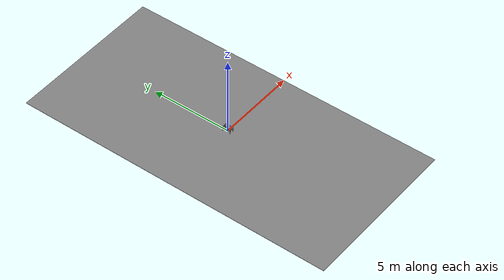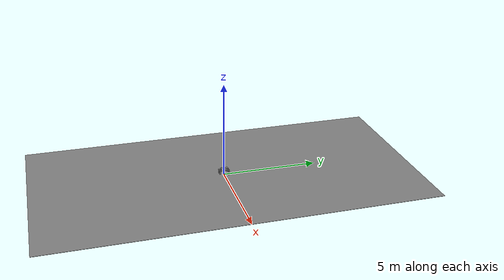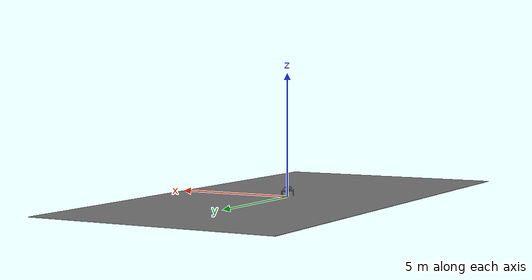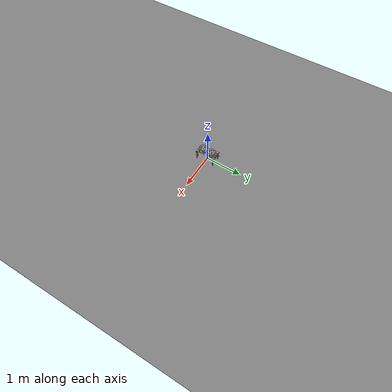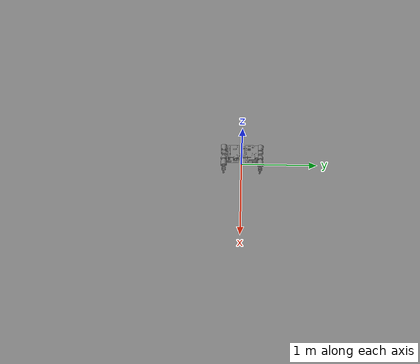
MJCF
<mujoco model="quadruped">
    <compiler angle="radian" eulerseq="XYZ" />
    <option gravity="0 0 -9.8" timestep="0.001"/>
    <asset>
        <mesh name="SPINE_BASE" file="meshes/SPINE_BASE.stl" scale="0.001 0.001 0.001" />
        <mesh name="FR_tibia" file="meshes/FR_tibia.stl" scale="0.001 0.001 0.001" />
        <mesh name="FR_femur" file="meshes/FR_femur.stl" scale="0.001 0.001 0.001" />
        <mesh name="FR_hip" file="meshes/FR_hip.stl" scale="0.001 0.001 0.001" />
        <mesh name="FL_tibia" file="meshes/FL_tibia.stl" scale="0.001 0.001 0.001" />
        <mesh name="FL_femur" file="meshes/FL_femur.stl" scale="0.001 0.001 0.001" />
        <mesh name="FL_hip" file="meshes/FL_hip.stl" scale="0.001 0.001 0.001" />
        <mesh name="RR_tibia" file="meshes/RR_tibia.stl" scale="0.001 0.001 0.001" />
        <mesh name="RR_femur" file="meshes/RR_femur.stl" scale="0.001 0.001 0.001" />
        <mesh name="RR_hip" file="meshes/RR_hip.stl" scale="0.001 0.001 0.001" />
        <mesh name="RL_tibia" file="meshes/RL_tibia.stl" scale="0.001 0.001 0.001" />
        <mesh name="RL_femur" file="meshes/RL_femur.stl" scale="0.001 0.001 0.001" />
        <mesh name="RL_hip" file="meshes/RL_hip.stl" scale="0.001 0.001 0.001" />
        <mesh name="frontbase" file="meshes/frontbase.stl" scale="0.001 0.001 0.001" />
        <mesh name="backbase" file="meshes/backbase.stl" scale="0.001 0.001 0.001" />
    </asset>
    <worldbody>
        <light directional="true" pos="-0.5 0.5 3" dir="0 0 -1" />
        <body name="tilt_plane" pos="0 0 0" euler="0 0 0">
            <joint name="plane_hinge" type="hinge" axis="1 0 0" damping="100"/>
            <geom  type="box" size="5 10 0.01"/>
        </body>
        <body name="frontbase" pos="0.0 0.0 0.0" euler="0.0 -0.0 0.0">
        <site name="imu_site" pos="0 0.12 0.35" size="0.005" rgba="1 0 0 1" />
            <joint name="root" type="free" />
            <geom name="frontbase_geom" type="mesh" mesh="frontbase" pos="0 0 0" euler="0 0 0" />
            <inertial mass="2.7047567302273086" pos="0.00033440222387868623 0.1245660632194667 0.2884083159461461" fullinertia="0.01078220929242324 0.013457553343312278 0.013262848443079664 1.1086881562630236e-05 2.426939650604682e-05 -0.0005029335341283497" />
            <body name="SPINE_BASE" pos="0.0 0.0 0.0" euler="0.0 -0.0 0.0">
                <joint name="F_j_spine" type="hinge" axis="0.0 -1.0 0.0" pos="0.0 0.048 0.2765" damping="1"/>
                <geom name="SPINE_BASE_geom" type="mesh" mesh="SPINE_BASE" pos="0 0 0" euler="0 0 0" />
                <inertial mass="0.31335795014290313" pos="3.392857252372269e-05 0.02698902626004699 0.30937648052390193" fullinertia="0.0004972224121499481 0.00096065696826848 0.0005518668776431874 -1.7053173613796147e-07 5.967022642829059e-08 1.8881962424268858e-05" />
                <body name="backbase" pos="0.0 0.0 0.0" euler="0.0 -0.0 0.0">
                    <joint name="j_universal" type="hinge" axis="-1.0 0.0 0.0" pos="0.0 0.0 0.2765" damping="1"/>
                    <geom name="backbase_geom" type="mesh" mesh="backbase" pos="0 0 0" euler="0 0 0" />
                    <inertial mass="2.3982713090097723" pos="0.0001274862400743814 -0.10802423334208117 0.2904487532785768" fullinertia="0.009337659887838579 0.012385899804342904 0.012531182800279348 2.5780826839093287e-06 4.543731847408657e-06 -8.91143168535169e-05" />
                    <body name="RR_hip" pos="0.0 0.0 0.0" euler="0.0 -0.0 0.0">
                        <joint name="RR_j_hip" type="hinge" axis="0.0 -1.0 0.0" pos="0.07 -0.176 0.266" damping="1"/>
                        <geom name="RR_hip_geom" type="mesh" mesh="RR_hip" pos="0 0 0" euler="0 0 0" />
                        <inertial mass="0.42765614096569765" pos="0.04127800942400755 -0.2273092587519674 0.26606812124931534" fullinertia="0.0003819813177835876 0.00022425957082698733 0.0003062069227042566 -2.5639633945336374e-05 5.604986032681919e-07 2.0864847461235514e-07" />
                        <body name="RR_femur" pos="0.0 0.0 0.0" euler="0.0 -0.0 0.0">
                            <joint name="RR_j_femur" type="hinge" axis="1.0 0.0 0.0" pos="0.056 -0.234 0.266" damping="1"/>
                            <geom name="RR_femur_geom" type="mesh" mesh="RR_femur" pos="0 0 0" euler="0 0 0" />
                            <inertial mass="0.5478239660925199" pos="0.10262713634913981 -0.23333676163791178 0.2564743290521438" fullinertia="0.0009210868412945078 0.0009515235171001224 0.0003898366261748873 1.0369006426390326e-05 0.00012862808425460025 -3.44730242726049e-06" />
                            <body name="RR_tibia" pos="0.0 0.0 0.0" euler="0.0 -0.0 0.0">
                                <joint name="RR_j_tibia" type="hinge" axis="1.0 0.0 0.0" pos="0.113 -0.234 0.126" damping="1"/>
                                <geom name="RR_tibia_geom" type="mesh" mesh="RR_tibia" pos="0 0 0" euler="0 0 0" />
                                <inertial mass="0.06643041309117047" pos="0.1300000003100186 -0.23399974067058146 0.07451621272270392" fullinertia="0.0001728263651286045 0.00016950454321351953 7.324185496569019e-06 1.44164288016016e-09 8.782037597132586e-17 1.432228884318612e-09" />
                            </body>
                        </body>
                    </body>
                    <body name="RL_hip" pos="0.0 0.0 0.0" euler="0.0 -0.0 0.0">
                        <joint name="RL_j_hip" type="hinge" axis="0.0 -1.0 0.0" pos="-0.07 -0.176 0.266" damping="1"/>
                        <geom name="RL_hip_geom" type="mesh" mesh="RL_hip" pos="0 0 0" euler="0 0 0" />
                        <inertial mass="0.42765614096569793" pos="-0.041278008804007546 -0.22730925875196725 0.26593187827114756" fullinertia="0.00038198131778947875 0.0002242595708328715 0.00030620692270427394 2.563963394533117e-05 5.60496829816147e-07 -2.0865824064408844e-07" />
                        <body name="RL_femur" pos="0.0 0.0 0.0" euler="0.0 -0.0 0.0">
                            <joint name="RL_j_femur" type="hinge" axis="-1.0 -0.0 -0.0" pos="-0.056 -0.234 0.266" damping="1"/>
                            <geom name="RL_femur_geom" type="mesh" mesh="RL_femur" pos="0 0 0" euler="0 0 0" />
                            <inertial mass="0.5478239660925199" pos="-0.10262713572913987 -0.23333676163791509 0.25636797041582277" fullinertia="0.0009199706233370408 0.0009504072991454657 0.00038983662617207704 -1.0369006426445837e-05 -0.00012716627840188635 -3.5134260216729274e-06" />
                            <body name="RL_tibia" pos="0.0 0.0 0.0" euler="0.0 -0.0 0.0">
                                <joint name="RL_j_tibia" type="hinge" axis="-1.0 0.0 0.0" pos="-0.113 -0.234 0.126" damping="1"/>
                                <geom name="RL_tibia_geom" type="mesh" mesh="RL_tibia" pos="0 0 0" euler="0 0 0" />
                                <inertial mass="0.06643041309117051" pos="-0.1299999996900186 -0.23400025932378982 0.07451621072657212" fullinertia="0.0001728263651286444 0.0001695045432135191 7.32418549660805e-06 1.4416428792927982e-09 -8.738669510233166e-17 -1.4322288387821208e-09" />
                            </body>
                        </body>
                    </body>
                </body>
            </body>
            <body name="FL_hip" pos="0.0 0.0 0.0" euler="0.0 -0.0 0.0">
                <joint name="FL_j_hip" type="hinge" axis="0.0 -1.0 0.0" pos="-0.07 0.18775 0.2665" damping="1"/>
                <geom name="FL_hip_geom" type="mesh" mesh="FL_hip" pos="0 0 0" euler="0 0 0" />
                <inertial mass="0.4276561259852311" pos="-0.04127800980681607 0.2390592581385746 0.26656812124525314" fullinertia="0.0003819813000275618 0.00022425955607973877 0.00030620690583911536 -2.5639628777544832e-05 -5.605021222137435e-07 -2.0865082585308503e-07" />
                <body name="FL_femur" pos="0.0 0.0 0.0" euler="0.0 -0.0 0.0">
                    <joint name="FL_j_femur" type="hinge" axis="-1.0 0.0 0.0" pos="-0.056 0.24575 0.2665" damping="1"/>
                    <geom name="FL_femur_geom" type="mesh" mesh="FL_femur" pos="0 0 0" euler="0 0 0" />
                    <inertial mass="0.54782396609252" pos="-0.10262713603913984 0.2450867616397348 0.25697432863221853" fullinertia="0.0009210868407927564 0.0009515235170791322 0.0003898366256941052 1.0369006323856025e-05 -0.00012862808425901165 3.4473026945397445e-06" />
                    <body name="FL_tibia" pos="0.0 0.0 0.0" euler="0.0 -0.0 0.0">
                        <joint name="FL_j_tibia" type="hinge" axis="-1.0 0.0 0.0" pos="-0.113 0.24575 0.1265" damping="1"/>
                        <geom name="FL_tibia_geom" type="mesh" mesh="FL_tibia" pos="0 0 0" euler="0 0 0" />
                        <inertial mass="0.06643041309117047" pos="-0.1300000000000186 0.24574974067057934 0.0750162123027041" fullinertia="0.00017282636512864612 0.00016950454321351975 7.324185496609785e-06 1.4416428805938408e-09 -8.738669510233166e-17 -1.4322288392158017e-09" />
                    </body>
                </body>
            </body>
            <body name="FR_hip" pos="0.0 0.0 0.0" euler="0.0 -0.0 0.0">
                <joint name="FR_j_hip" type="hinge" axis="0.0 -1.0 0.0" pos="0.07 0.18775 0.2665" damping="1"/>
                <geom name="FR_hip_geom" type="mesh" mesh="FR_hip" pos="0 0 0" euler="0 0 0" />
                <inertial mass="0.4276561259852312" pos="0.04127800980681604 0.2390592581385745 0.26643187943539876" fullinertia="0.00038198130003343905 0.00022425955608560214 0.00030620690583912924 2.5639628777546566e-05 -5.605003454266927e-07 2.0866111600723047e-07" />
                <body name="FR_femur" pos="0.0 0.0 0.0" euler="0.0 -0.0 0.0">
                    <joint name="FR_j_femur" type="hinge" axis="1.0 0.0 0.0" pos="0.056 0.24575 0.2665" damping="1"/>
                    <geom name="FR_femur_geom" type="mesh" mesh="FR_femur" pos="0 0 0" euler="0 0 0" />
                    <inertial mass="0.5478239660925192" pos="0.10262713603913984 0.2450867616397381 0.2568679719959032" fullinertia="0.0009199706228392168 0.0009504072991228102 0.0003898366256969016 -1.0369006323908067e-05 0.00012716627840619887 3.513426288875854e-06" />
                    <body name="FR_tibia" pos="0.0 0.0 0.0" euler="0.0 -0.0 0.0">
                        <joint name="FR_j_tibia" type="hinge" axis="1.0 0.0 0.0" pos="0.113 0.24575 0.1265" damping="1"/>
                        <geom name="FR_tibia_geom" type="mesh" mesh="FR_tibia" pos="0 0 0" euler="0 0 0" />
                        <inertial mass="0.06643041309117052" pos="0.13000000000001857 0.24575025932378775 0.07501621230657225" fullinertia="0.0001728263651286045 0.00016950454321351953 7.324185496567284e-06 1.441642879726479e-09 8.792879618857441e-17 1.4322288841017716e-09" />
                    </body>
                </body>
            </body>
        </body>
    </worldbody>

    <actuator>
        <!-- Front Right leg -->
        <position name="FR_hip_act" joint="FR_j_hip" gear="1" ctrllimited="true" ctrlrange="-3.14 3.14" kp="50"/>
        <position name="FR_femur_act" joint="FR_j_femur" gear="1" ctrllimited="true" ctrlrange="-3.14 3.14" kp="50"/>
        <position name="FR_tibia_act" joint="FR_j_tibia" gear="1" ctrllimited="true" ctrlrange="-3.14 3.14" kp="50"/>

        <!-- Front Left leg -->
        <position name="FL_hip_act" joint="FL_j_hip" gear="1" ctrllimited="true" ctrlrange="-3.14 3.14" kp="50"/>
        <position name="FL_femur_act" joint="FL_j_femur" gear="1" ctrllimited="true" ctrlrange="-3.14 3.14" kp="50"/>
        <position name="FL_tibia_act" joint="FL_j_tibia" gear="1" ctrllimited="true" ctrlrange="-3.14 3.14" kp="50"/>

        <!-- Rear Right leg -->
        <position name="RR_hip_act" joint="RR_j_hip" gear="1" ctrllimited="true" ctrlrange="-3.14 3.14" kp="50"/>
        <position name="RR_femur_act" joint="RR_j_femur" gear="1" ctrllimited="true" ctrlrange="-3.14 3.14" kp="50"/>
        <position name="RR_tibia_act" joint="RR_j_tibia" gear="1" ctrllimited="true" ctrlrange="-3.14 3.14" kp="50"/>

        <!-- Rear Left leg -->
        <position name="RL_hip_act" joint="RL_j_hip" gear="1" ctrllimited="true" ctrlrange="-3.14 3.14" kp="50"/>
        <position name="RL_femur_act" joint="RL_j_femur" gear="1" ctrllimited="true" ctrlrange="-3.14 3.14" kp="50"/>
        <position name="RL_tibia_act" joint="RL_j_tibia" gear="1" ctrllimited="true" ctrlrange="-3.14 3.14" kp="50"/>

        <!-- Spine actuators -->
        <position name="F_spine_act" joint="F_j_spine"   gear="1" ctrllimited="true" ctrlrange="-3.14 3.14" kp="50"/>
        <position name="UJ_spine_act" joint="j_universal" gear="1" ctrllimited="true" ctrlrange="-3.14 3.14" kp="50"/>

        <!-- Plane actuators -->
        <position name="plane_tilt" joint="plane_hinge" kp="1000"/>
    </actuator>

    <sensor>
        <accelerometer site="imu_site" />
        <gyro name="imu_gyro" site="imu_site"/>

        <!-- Front Right leg -->
        <actuatorfrc name="FR_hip_s_tau" actuator="FR_hip_act"/>
        <actuatorpos name="FR_hip_s_pos" actuator="FR_hip_act"/>
        <actuatorvel name="FR_hip_s_vel" actuator="FR_hip_act"/>
        <actuatorfrc name="FR_femur_s_tau" actuator="FR_femur_act"/>
        <actuatorpos name="FR_femur_s_pos" actuator="FR_femur_act"/>
        <actuatorvel name="FR_femur_s_vel" actuator="FR_femur_act"/>
        <actuatorfrc name="FR_tibia_s_tau" actuator="FR_tibia_act"/>
        <actuatorpos name="FR_tibia_s_pos" actuator="FR_tibia_act"/>
        <actuatorvel name="FR_tibia_s_vel" actuator="FR_tibia_act"/>

        <!-- Front Left leg -->
        <actuatorfrc name="FL_hip_s_tau" actuator="FL_hip_act"/>
        <actuatorpos name="FL_hip_s_pos" actuator="FL_hip_act"/>
        <actuatorvel name="FL_hip_s_vel" actuator="FL_hip_act"/>
        <actuatorfrc name="FL_femur_s_tau" actuator="FL_femur_act"/>
        <actuatorpos name="FL_femur_s_pos" actuator="FL_femur_act"/>
        <actuatorvel name="FL_femur_s_vel" actuator="FL_femur_act"/>
        <actuatorfrc name="FL_tibia_s_tau" actuator="FL_tibia_act"/>
        <actuatorpos name="FL_tibia_s_pos" actuator="FL_tibia_act"/>
        <actuatorvel name="FL_tibia_s_vel" actuator="FL_tibia_act"/>

        <!-- Rear Right leg -->
        <actuatorfrc name="RR_hip_s_tau" actuator="RR_hip_act"/>
        <actuatorpos name="RR_hip_s_pos" actuator="RR_hip_act"/>
        <actuatorvel name="RR_hip_s_vel" actuator="RR_hip_act"/>
        <actuatorfrc name="RR_femur_s_tau" actuator="RR_femur_act"/>
        <actuatorpos name="RR_femur_s_pos" actuator="RR_femur_act"/>
        <actuatorvel name="RR_femur_s_vel" actuator="RR_femur_act"/>
        <actuatorfrc name="RR_tibia_s_tau" actuator="RR_tibia_act"/>
        <actuatorpos name="RR_tibia_s_pos" actuator="RR_tibia_act"/>
        <actuatorvel name="RR_tibia_s_vel" actuator="RR_tibia_act"/>

        <!-- Rear Left leg -->
        <actuatorfrc name="RL_hip_s_tau" actuator="RL_hip_act"/>
        <actuatorpos name="RL_hip_s_pos" actuator="RL_hip_act"/>
        <actuatorvel name="RL_hip_s_vel" actuator="RL_hip_act"/>
        <actuatorfrc name="RL_femur_s_tau" actuator="RL_femur_act"/>
        <actuatorpos name="RL_femur_s_pos" actuator="RL_femur_act"/>
        <actuatorvel name="RL_femur_s_vel" actuator="RL_femur_act"/>
        <actuatorfrc name="RL_tibia_s_tau" actuator="RL_tibia_act"/>
        <actuatorpos name="RL_tibia_s_pos" actuator="RL_tibia_act"/>
        <actuatorvel name="RL_tibia_s_vel" actuator="RL_tibia_act"/>

        <!-- Spine -->
        <actuatorpos  name="UJ_spine_s_pos" actuator="UJ_spine_act"/>
        <actuatorvel  name="UJ_spine_s_vel" actuator="UJ_spine_act"/>
        <actuatorfrc  name="UJ_spine_s_tau" actuator="UJ_spine_act"/>

        <actuatorpos  name="F_spine_s_pos"  actuator="F_spine_act"/>
        <actuatorvel  name="F_spine_s_vel"  actuator="F_spine_act"/>
        <actuatorfrc  name="F_spine_s_tau"  actuator="F_spine_act"/>

    </sensor>

</mujoco>
